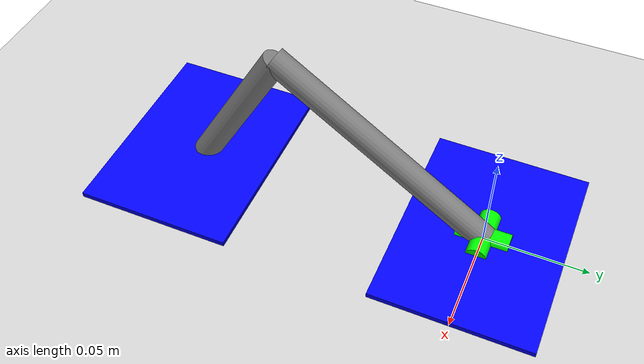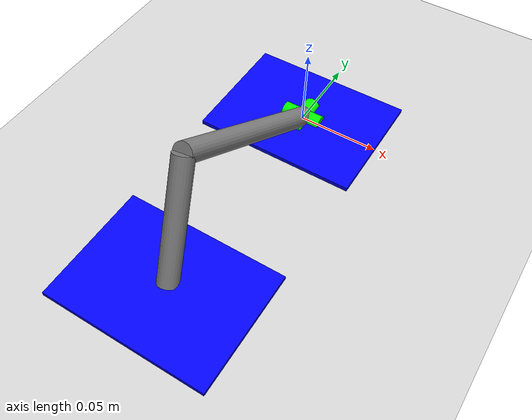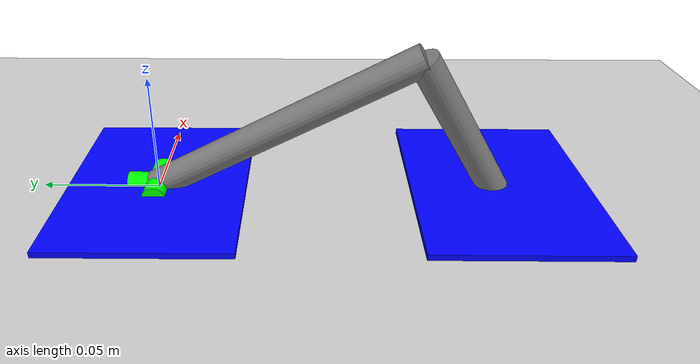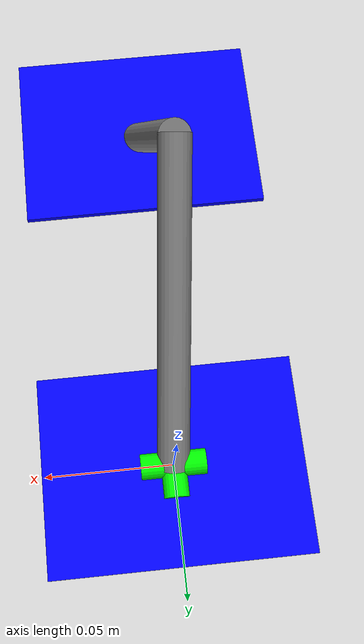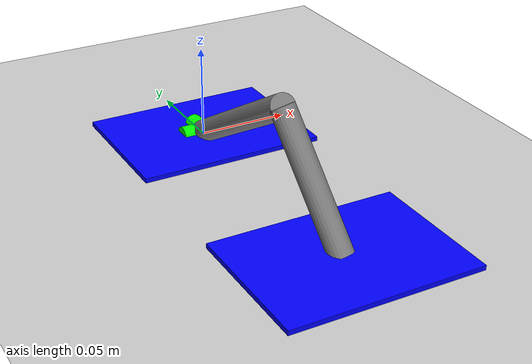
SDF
<?xml version="1.0" ?>
<sdf version="1.11">
    <world name="current_world">
        <physics name="1ms" type="ignored">
            <max_step_size>0.001</max_step_size>
            <real_time_factor>1.0</real_time_factor>
        </physics>
        <plugin
            filename="gz-sim-physics-system"
            name="gz::sim::systems::Physics">
        </plugin>
        <plugin
            filename="gz-sim-user-commands-system"
            name="gz::sim::systems::UserCommands">
        </plugin>
        <plugin
            filename="gz-sim-scene-broadcaster-system"
            name="gz::sim::systems::SceneBroadcaster">
        </plugin>
    <gui fullscreen="0">

	<!-- 3D scene -->
	<plugin filename="MinimalScene" name="3D View">
	    <gz-gui>
		<title>3D View</title>
		<property type="bool" key="showTitleBar">false</property>
		<property type="string" key="state">docked</property>
	    </gz-gui>
	    <engine>ogre</engine>
	    <scene>scene</scene>
	    <ambient_light>0.4 0.4 0.4</ambient_light>
	    <background_color>0.8 0.8 0.8</background_color>
	    <camera_pose>0 -.2 .05 0 0 1.57</camera_pose>
	</plugin>

	<!-- Plugins that add functionality to the scene -->
	<plugin filename="EntityContextMenuPlugin" name="Entity context menu">
	    <gz-gui>
		<property key="state" type="string">floating</property>
		<property key="width" type="double">5</property>
		<property key="height" type="double">5</property>
		<property key="showTitleBar" type="bool">false</property>
	    </gz-gui>
	</plugin>

	<plugin filename="GzSceneManager" name="Scene Manager">
	    <gz-gui>
		<property key="resizable" type="bool">false</property>
		<property key="width" type="double">5</property>
		<property key="height" type="double">5</property>
		<property key="state" type="string">floating</property>
		<property key="showTitleBar" type="bool">false</property>
	    </gz-gui>
	</plugin>

	<plugin filename="InteractiveViewControl" name="Interactive view control">
	    <gz-gui>
		<property key="resizable" type="bool">false</property>
		<property key="width" type="double">5</property>
		<property key="height" type="double">5</property>
		<property key="state" type="string">floating</property>
		<property key="showTitleBar" type="bool">false</property>
	    </gz-gui>
	</plugin>

	<plugin filename="MarkerManager" name="Marker manager">
	    <gz-gui>
		<property key="resizable" type="bool">false</property>
		<property key="width" type="double">5</property>
		<property key="height" type="double">5</property>
		<property key="state" type="string">floating</property>
		<property key="showTitleBar" type="bool">false</property>
	    </gz-gui>
	</plugin>

	<plugin filename="SelectEntities" name="Select Entities">
	    <gz-gui>
		<property key="resizable" type="bool">false</property>
		<property key="width" type="double">5</property>
		<property key="height" type="double">5</property>
		<property key="state" type="string">floating</property>
		<property key="showTitleBar" type="bool">false</property>
	    </gz-gui>
	</plugin>

	<plugin filename="VisualizationCapabilities" name="Visualization Capabilities">
	    <gz-gui>
		<property key="resizable" type="bool">false</property>
		<property key="width" type="double">5</property>
		<property key="height" type="double">5</property>
		<property key="state" type="string">floating</property>
		<property key="showTitleBar" type="bool">false</property>
	    </gz-gui>
	</plugin>

	<!-- World control -->
	<plugin filename="WorldControl" name="World control">
	    <gz-gui>
		<title>World control</title>
		<property type="bool" key="showTitleBar">false</property>
		<property type="bool" key="resizable">false</property>
		<property type="double" key="height">72</property>
		<property type="double" key="z">1</property>
		<property type="string" key="state">floating</property>
		<anchors target="3D View">
		    <line own="left" target="left"/>
		    <line own="bottom" target="bottom"/>
		</anchors>
	    </gz-gui>
	    <play_pause>true</play_pause>
	    <step>true</step>
	    <start_paused>true</start_paused>
	    <use_event>true</use_event>
	</plugin>

	<!-- World statistics -->
	<plugin filename="WorldStats" name="World stats">
	    <gz-gui>
		<title>World stats</title>
		<property type="bool" key="showTitleBar">false</property>
		<property type="bool" key="resizable">false</property>
		<property type="double" key="height">110</property>
		<property type="double" key="width">290</property>
		<property type="double" key="z">1</property>
		<property type="string" key="state">floating</property>
		<anchors target="3D View">
		    <line own="right" target="right"/>
		    <line own="bottom" target="bottom"/>
		</anchors>
	    </gz-gui>
	    <sim_time>true</sim_time>
	    <real_time>true</real_time>
	    <real_time_factor>true</real_time_factor>
	    <iterations>true</iterations>
	</plugin>

	<!-- Translate / rotate -->
	<plugin filename="TransformControl" name="Transform control">
	    <gz-gui>
		<property key="resizable" type="bool">false</property>
		<property key="x" type="double">0</property>
		<property key="y" type="double">50</property>
		<property key="width" type="double">250</property>
		<property key="height" type="double">50</property>
		<property key="state" type="string">floating</property>
		<property key="showTitleBar" type="bool">false</property>
		<property key="cardBackground" type="string">#777777</property>
	    </gz-gui>
	</plugin>

	<!-- Inspector -->
	<plugin filename="ComponentInspector" name="Component inspector">
	    <gz-gui>
		<property type="bool" key="showTitleBar">false</property>
		<property type="string" key="state">docked</property>
	    </gz-gui>
	</plugin>

	<!-- Entity tree -->
	<plugin filename="EntityTree" name="Entity tree">
	    <gz-gui>
		<property type="bool" key="showTitleBar">false</property>
		<property type="string" key="state">docked</property>
	    </gz-gui>
	</plugin>
      </gui>
	<light type="directional" name="sun">
	    <cast_shadows>false</cast_shadows>
	    <pose>0 0 10 0 0 0</pose>
	    <diffuse>0.8 0.8 0.8 1</diffuse>
	    <specular>0.2 0.2 0.2 1</specular>
	    <attenuation>
		<range>1000</range>
		<constant>0.9</constant>
		<linear>0.01</linear>
		<quadratic>0.001</quadratic>
	    </attenuation>
	    <direction>-0.5 0.1 -0.9</direction>
	</light>
	<model name="ground_plane">
	    <static>true</static>
	    <link name="lnkGround">
		<collision name="collision">
		<geometry>
		    <plane>
		    <normal>0 0 1</normal>
		    </plane>
		</geometry>
		</collision>
		<visual name="visual">
		<geometry>
		    <plane>
		    <normal>0 0 1</normal>
		    <size>100 100</size>
		    </plane>
		</geometry>
		<material>
		    <ambient>0.8 0.8 0.8 1</ambient>
		    <diffuse>0.8 0.8 0.8 1</diffuse>
		    <specular>0.8 0.8 0.8 1</specular>
		</material>
		</visual>
	    </link>
	</model>

<!-- Foot -->
    <model name="mdlFoot">
	<pose>0 0 0.0013 0 0 0</pose>
	<link name="lnkPlantar">
		<inertial>
		  <mass>.223</mass>
		  <inertia>  <ixx>0.000108</ixx> <iyy>0.000192</iyy>
		    <izz>0.0003</izz>
		    <ixy>0</ixy>
		    <ixz>0</ixz>
		    <iyz>0</iyz>
		  </inertia>
		</inertial>
		<collision name="collision">
		  <geometry>
		    <box>
		      <size>0.1016 0.0762 0.00254</size> </box>
		  </geometry>
		   <surface>
		    <friction>
		      <ode>
			<mu>0.5</mu>
			<mu2>0.5</mu2>
		      </ode>
		    </friction>
		  </surface>
		</collision>
		<visual name="visual">
		  <geometry>
		    <box>
		      <size>0.1016 0.0762 0.00254</size>
		    </box>
		  </geometry>
		  <material>
			<ambient>0 0 1 1</ambient>
			<diffuse>0 0 1 1</diffuse>
			<specular>0.1 0.1 0.1 1</specular>
		  </material>
		</visual>
	</link>

	<link name="lnkHeel">
		<pose relative_to="lnkPlantar">0 -0.146647 0 0 0 0</pose>
		<inertial>
		  <mass>.223</mass>
		  <inertia>  <ixx>0.000108</ixx> <iyy>0.000192</iyy>
		    <izz>0.0003</izz>
		    <ixy>0</ixy>
		    <ixz>0</ixz>
		    <iyz>0</iyz>
		  </inertia>
		</inertial>
		<collision name="collision">
		  <geometry>
		    <box>
		      <size>0.1016 0.0762 0.00254</size> </box>
		  </geometry>
		   <surface>
		    <friction>
		      <ode>
			<mu>0.5</mu>
			<mu2>0.5</mu2>
		      </ode>
		    </friction>
		  </surface>
		</collision>
		<visual name="visual">
		  <geometry>
		    <box>
		      <size>0.1016 0.0762 0.00254</size>
		    </box>
		  </geometry>
		  <material>
			<ambient>0 0 1 1</ambient>
			<diffuse>0 0 1 1</diffuse>
			<specular>0.1 0.1 0.1 1</specular>
		  </material>
		</visual>
	</link>
	<link name="sldPlantarRoll">
		<pose relative_to="lnkPlantar">0 0 0 1.5708 0 0</pose>
		<inertial>
		  <mass>.01</mass>
		  <inertia>
		    <ixx>0.000001</ixx>  <iyy>0.000001</iyy>
		    <izz>0.000001</izz>
		    <ixy>0</ixy>
		    <ixz>0</ixz>
		    <iyz>0</iyz>
		  </inertia>
		</inertial>
		<visual name="visual">
		  <geometry>
		    <cylinder>
		      <radius>0.00508</radius>
		      <length>0.0254</length>
		    </cylinder>
		  </geometry>
		  <material>
		    <ambient>0 1 0 1</ambient>  <diffuse>0 1 0 1</diffuse>  <specular>0.1 0.1 0.1 1</specular>
		  </material>
		</visual>
	</link>
	<link name="sldPlantarPitch">
		<pose relative_to="jntPlantar">0 0 0 0 1.5708 0</pose>
		<inertial>
		  <mass>.01</mass>
		  <inertia>
		    <ixx>0.000001</ixx>  <iyy>0.000001</iyy>
		    <izz>0.000001</izz>
		    <ixy>0</ixy>
		    <ixz>0</ixz>
		    <iyz>0</iyz>
		  </inertia>
		</inertial>
		<visual name="visual">
		  <geometry>
		    <cylinder>
		      <radius>0.00508</radius>
		      <length>0.0254</length>
		    </cylinder>
		  </geometry>
		  <material>
		    <ambient>0 1 0 1</ambient>  <diffuse>0 1 0 1</diffuse>  <specular>0.1 0.1 0.1 1</specular>
		  </material>
		</visual>
	</link>
	<link name="lnkMetatarsal">
		<pose relative_to="frmPlantarTop">0 0 0.06235 0 0 0</pose>
		<inertial>
		  <mass>.23</mass>
		  <inertia>
		    <ixx>0.000311</ixx>  <iyy>0.000311</iyy>
		    <izz>0.000005</izz>
		    <ixy>0</ixy>
		    <ixz>0</ixz>
		    <iyz>0</iyz>
		  </inertia>
		</inertial>
		<visual name="visual">
		  <geometry>
		    <cylinder>
		      <radius>0.00635</radius>
		      <length>0.12700</length>
		    </cylinder>
		  </geometry>
		  <material>
		    <ambient>0.5 0.5 0.5 1</ambient>  <diffuse>0.5 0.5 0.5 1</diffuse>
		    <specular>0.1 0.1 0.1 1</specular>
		  </material>
		</visual>
	</link>

	<link name="lnkCalcaneus">
		<pose relative_to="frmProximalMetatarsal">0 0 0.0366617 0 0 0</pose>
		<inertial>
		  <mass>.132</mass>
		  <inertia>
		    <ixx>0.00006</ixx>  <iyy>0.00006</iyy>
		    <izz>0.000003</izz>
		    <ixy>0</ixy>
		    <ixz>0</ixz>
		    <iyz>0</iyz>
		  </inertia>
		</inertial>
		<visual name="visual">
		  <geometry>
		    <cylinder>
		      <radius>0.00635</radius>
		      <length>0.0733235</length>
		    </cylinder>
		  </geometry>
		  <material>
		    <ambient>0.5 0.5 0.5 1</ambient>  <diffuse>0.5 0.5 0.5 1</diffuse>
		    <specular>0.1 0.1 0.1 1</specular>
		  </material>
		</visual>
	</link>

	<frame name="frmProximalMetatarsal" attached_to="lnkMetatarsal">
		<pose>0 0 0.06235 1.5708 0 0</pose>
	</frame>

	<frame name="frmPlantarTop" attached_to="lnkPlantar">
		<pose>0 0 0.000127 1.0472 -0.17453 0</pose>
	</frame>

	<joint name="weld1" type="fixed">
		<parent>lnkMetatarsal</parent>
		<child>lnkCalcaneus</child>
		<pose>0 0 0 0 0 0</pose>
	</joint>

	<joint name="weld2" type="fixed">
		<parent>lnkMetatarsal</parent>
		<child>sldPlantarPitch</child>
		<pose>0 0 0 0 0 0</pose>
	</joint>

	<joint name="weld3" type="fixed">
		<parent>lnkPlantar</parent>
		<child>sldPlantarRoll</child>
		<pose>0 0 0 0 0 0</pose>
	</joint>
	<joint name="jntPlantar" type="universal">
		<parent>lnkPlantar</parent>
		<child>lnkMetatarsal</child>
		<pose relative_to="lnkPlantar">0 0 0.000127 0 0 0</pose>
		<axis>
		  <xyz>0 1 0</xyz>
		</axis>
		<axis2>
		  <xyz>1 0 0</xyz>
		</axis2>
	</joint>

      </model>
    </world>
</sdf>
